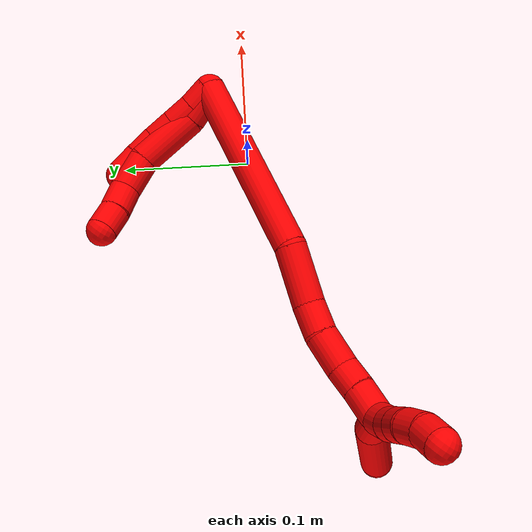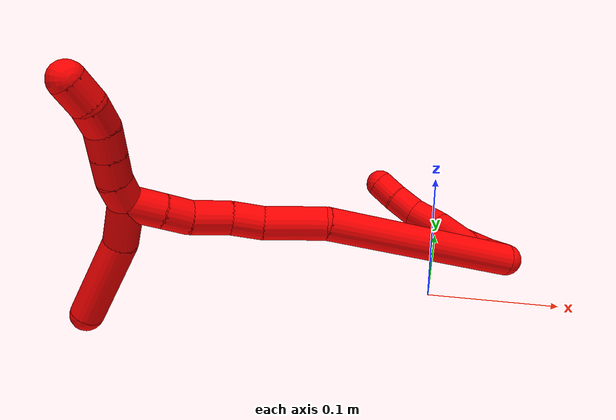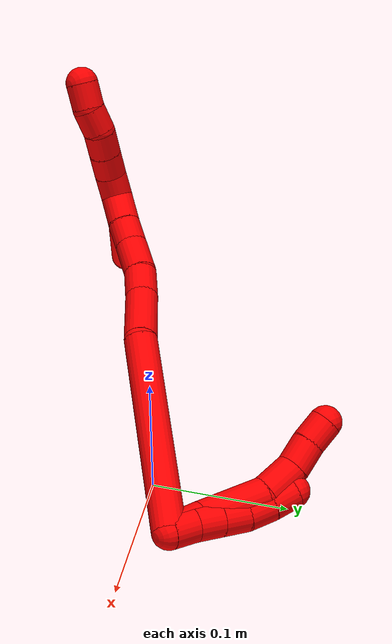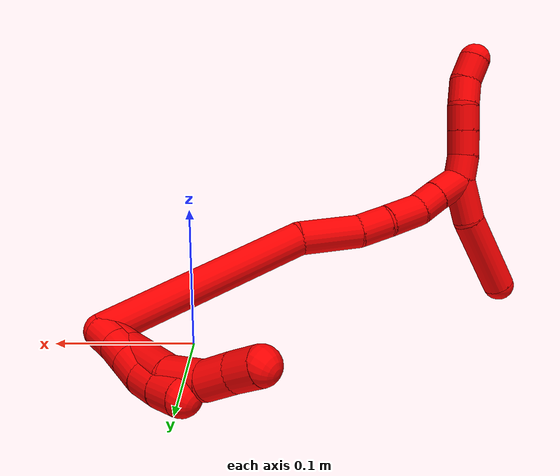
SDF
<sdf version="1.7">
 <world name="default">
  <model name="2">
   <static>0</static>
   <link name="2">
    <collision name="collision-cylinder-e_1_2_8">
     <pose>-7.4e-05 6.6e-05 0.014332 -0.004585 -0.005159 1.2e-05</pose>
     <geometry><cylinder><radius>0.0125</radius><length>0.028664</length></cylinder></geometry>
     <surface>
      <friction><ode><mu>1.16</mu><mu2>1.16</mu2><slip1>0</slip1><slip2>0</slip2></ode></friction>
      <contact><ode><kp>1e+06</kp><kd>1</kd><max_vel>0</max_vel><min_depth>0.001</min_depth></ode></contact>
     </surface>
    </collision>
    <visual name="visual-cylinder-e_1_2_8">
     <pose>-7.4e-05 6.6e-05 0.014332 -0.004585 -0.005159 1.2e-05</pose>
     <geometry><cylinder><radius>0.0125</radius><length>0.028664</length></cylinder></geometry>
     <material><ambient>1 0 0 1</ambient></material>
    </visual>
    <collision name="collision-cylinder-e_2_8_9">
     <pose>0.006509 -0.004318 0.052528 0.184317 0.267634 0.024882</pose>
     <geometry><cylinder><radius>0.0125</radius><length>0.050343</length></cylinder></geometry>
     <surface>
      <friction><ode><mu>1.16</mu><mu2>1.16</mu2><slip1>0</slip1><slip2>0</slip2></ode></friction>
      <contact><ode><kp>1e+06</kp><kd>1</kd><max_vel>0</max_vel><min_depth>0.001</min_depth></ode></contact>
     </surface>
    </collision>
    <visual name="visual-cylinder-e_2_8_9">
     <pose>0.006509 -0.004318 0.052528 0.184317 0.267634 0.024882</pose>
     <geometry><cylinder><radius>0.0125</radius><length>0.050343</length></cylinder></geometry>
     <material><ambient>1 0 0 1</ambient></material>
    </visual>
    <collision name="collision-cylinder-e_3_9_10">
     <pose>0.012777 -0.013912 0.089865 0.364768 -0.026906 -0.004963</pose>
     <geometry><cylinder><radius>0.0125</radius><length>0.028854</length></cylinder></geometry>
     <surface>
      <friction><ode><mu>1.16</mu><mu2>1.16</mu2><slip1>0</slip1><slip2>0</slip2></ode></friction>
      <contact><ode><kp>1e+06</kp><kd>1</kd><max_vel>0</max_vel><min_depth>0.001</min_depth></ode></contact>
     </surface>
    </collision>
    <visual name="visual-cylinder-e_3_9_10">
     <pose>0.012777 -0.013912 0.089865 0.364768 -0.026906 -0.004963</pose>
     <geometry><cylinder><radius>0.0125</radius><length>0.028854</length></cylinder></geometry>
     <material><ambient>1 0 0 1</ambient></material>
    </visual>
    <collision name="collision-cylinder-e_4_10_11">
     <pose>0.01126 -0.026076 0.111762 0.694687 -0.102619 -0.037179</pose>
     <geometry><cylinder><radius>0.0125</radius><length>0.022046</length></cylinder></geometry>
     <surface>
      <friction><ode><mu>1.16</mu><mu2>1.16</mu2><slip1>0</slip1><slip2>0</slip2></ode></friction>
      <contact><ode><kp>1e+06</kp><kd>1</kd><max_vel>0</max_vel><min_depth>0.001</min_depth></ode></contact>
     </surface>
    </collision>
    <visual name="visual-cylinder-e_4_10_11">
     <pose>0.01126 -0.026076 0.111762 0.694687 -0.102619 -0.037179</pose>
     <geometry><cylinder><radius>0.0125</radius><length>0.022046</length></cylinder></geometry>
     <material><ambient>1 0 0 1</ambient></material>
    </visual>
    <collision name="collision-cylinder-e_5_11_6">
     <pose>0.010347 -0.039214 0.128151 0.655129 0.021512 0.00731</pose>
     <geometry><cylinder><radius>0.0125</radius><length>0.020092</length></cylinder></geometry>
     <surface>
      <friction><ode><mu>1.16</mu><mu2>1.16</mu2><slip1>0</slip1><slip2>0</slip2></ode></friction>
      <contact><ode><kp>1e+06</kp><kd>1</kd><max_vel>0</max_vel><min_depth>0.001</min_depth></ode></contact>
     </surface>
    </collision>
    <visual name="visual-cylinder-e_5_11_6">
     <pose>0.010347 -0.039214 0.128151 0.655129 0.021512 0.00731</pose>
     <geometry><cylinder><radius>0.0125</radius><length>0.020092</length></cylinder></geometry>
     <material><ambient>1 0 0 1</ambient></material>
    </visual>
    <collision name="collision-cylinder-e_1_2_12">
     <pose>0.001415 0.000178 0.009898 -0.018015 0.141935 -0.001281</pose>
     <geometry><cylinder><radius>0.0125</radius><length>0.02</length></cylinder></geometry>
     <surface>
      <friction><ode><mu>1.16</mu><mu2>1.16</mu2><slip1>0</slip1><slip2>0</slip2></ode></friction>
      <contact><ode><kp>1e+06</kp><kd>1</kd><max_vel>0</max_vel><min_depth>0.001</min_depth></ode></contact>
     </surface>
    </collision>
    <visual name="visual-cylinder-e_1_2_12">
     <pose>0.001415 0.000178 0.009898 -0.018015 0.141935 -0.001281</pose>
     <geometry><cylinder><radius>0.0125</radius><length>0.02</length></cylinder></geometry>
     <material><ambient>1 0 0 1</ambient></material>
    </visual>
    <collision name="collision-cylinder-e_2_12_13">
     <pose>0.005404 0.000698 0.029452 -0.035296 0.260462 -0.004623</pose>
     <geometry><cylinder><radius>0.0125</radius><length>0.02</length></cylinder></geometry>
     <surface>
      <friction><ode><mu>1.16</mu><mu2>1.16</mu2><slip1>0</slip1><slip2>0</slip2></ode></friction>
      <contact><ode><kp>1e+06</kp><kd>1</kd><max_vel>0</max_vel><min_depth>0.001</min_depth></ode></contact>
     </surface>
    </collision>
    <visual name="visual-cylinder-e_2_12_13">
     <pose>0.005404 0.000698 0.029452 -0.035296 0.260462 -0.004623</pose>
     <geometry><cylinder><radius>0.0125</radius><length>0.02</length></cylinder></geometry>
     <material><ambient>1 0 0 1</ambient></material>
    </visual>
    <collision name="collision-cylinder-e_3_13_14">
     <pose>0.010559 0.001401 0.048764 -0.037536 0.260866 -0.004924</pose>
     <geometry><cylinder><radius>0.0125</radius><length>0.02</length></cylinder></geometry>
     <surface>
      <friction><ode><mu>1.16</mu><mu2>1.16</mu2><slip1>0</slip1><slip2>0</slip2></ode></friction>
      <contact><ode><kp>1e+06</kp><kd>1</kd><max_vel>0</max_vel><min_depth>0.001</min_depth></ode></contact>
     </surface>
    </collision>
    <visual name="visual-cylinder-e_3_13_14">
     <pose>0.010559 0.001401 0.048764 -0.037536 0.260866 -0.004924</pose>
     <geometry><cylinder><radius>0.0125</radius><length>0.02</length></cylinder></geometry>
     <material><ambient>1 0 0 1</ambient></material>
    </visual>
    <collision name="collision-cylinder-e_4_14_15">
     <pose>0.015273 0.000164 0.068056 0.16446 0.215131 0.017798</pose>
     <geometry><cylinder><radius>0.0125</radius><length>0.02</length></cylinder></geometry>
     <surface>
      <friction><ode><mu>1.16</mu><mu2>1.16</mu2><slip1>0</slip1><slip2>0</slip2></ode></friction>
      <contact><ode><kp>1e+06</kp><kd>1</kd><max_vel>0</max_vel><min_depth>0.001</min_depth></ode></contact>
     </surface>
    </collision>
    <visual name="visual-cylinder-e_4_14_15">
     <pose>0.015273 0.000164 0.068056 0.16446 0.215131 0.017798</pose>
     <geometry><cylinder><radius>0.0125</radius><length>0.02</length></cylinder></geometry>
     <material><ambient>1 0 0 1</ambient></material>
    </visual>
    <collision name="collision-cylinder-e_5_15_5">
     <pose>0.019244 -0.004142 0.087144 0.278963 0.184677 0.026</pose>
     <geometry><cylinder><radius>0.0125</radius><length>0.02</length></cylinder></geometry>
     <surface>
      <friction><ode><mu>1.16</mu><mu2>1.16</mu2><slip1>0</slip1><slip2>0</slip2></ode></friction>
      <contact><ode><kp>1e+06</kp><kd>1</kd><max_vel>0</max_vel><min_depth>0.001</min_depth></ode></contact>
     </surface>
    </collision>
    <visual name="visual-cylinder-e_5_15_5">
     <pose>0.019244 -0.004142 0.087144 0.278963 0.184677 0.026</pose>
     <geometry><cylinder><radius>0.0125</radius><length>0.02</length></cylinder></geometry>
     <material><ambient>1 0 0 1</ambient></material>
    </visual>
    <collision name="collision-cylinder-e_1_2_16">
     <pose>-0.055849 -0.043534 0.03045 0.960441 -0.810375 -0.439623</pose>
     <geometry><cylinder><radius>0.0125</radius><length>0.154162</length></cylinder></geometry>
     <surface>
      <friction><ode><mu>1.16</mu><mu2>1.16</mu2><slip1>0</slip1><slip2>0</slip2></ode></friction>
      <contact><ode><kp>1e+06</kp><kd>1</kd><max_vel>0</max_vel><min_depth>0.001</min_depth></ode></contact>
     </surface>
    </collision>
    <visual name="visual-cylinder-e_1_2_16">
     <pose>-0.055849 -0.043534 0.03045 0.960441 -0.810375 -0.439623</pose>
     <geometry><cylinder><radius>0.0125</radius><length>0.154162</length></cylinder></geometry>
     <material><ambient>1 0 0 1</ambient></material>
    </visual>
    <collision name="collision-cylinder-e_2_16_17">
     <pose>-0.128759 -0.094593 0.074566 0.50334 -0.830075 -0.22563</pose>
     <geometry><cylinder><radius>0.0125</radius><length>0.046239</length></cylinder></geometry>
     <surface>
      <friction><ode><mu>1.16</mu><mu2>1.16</mu2><slip1>0</slip1><slip2>0</slip2></ode></friction>
      <contact><ode><kp>1e+06</kp><kd>1</kd><max_vel>0</max_vel><min_depth>0.001</min_depth></ode></contact>
     </surface>
    </collision>
    <visual name="visual-cylinder-e_2_16_17">
     <pose>-0.128759 -0.094593 0.074566 0.50334 -0.830075 -0.22563</pose>
     <geometry><cylinder><radius>0.0125</radius><length>0.046239</length></cylinder></geometry>
     <material><ambient>1 0 0 1</ambient></material>
    </visual>
    <collision name="collision-cylinder-e_3_17_18">
     <pose>-0.154426 -0.108186 0.094119 0.800529 -0.794301 -0.351276</pose>
     <geometry><cylinder><radius>0.0125</radius><length>0.024124</length></cylinder></geometry>
     <surface>
      <friction><ode><mu>1.16</mu><mu2>1.16</mu2><slip1>0</slip1><slip2>0</slip2></ode></friction>
      <contact><ode><kp>1e+06</kp><kd>1</kd><max_vel>0</max_vel><min_depth>0.001</min_depth></ode></contact>
     </surface>
    </collision>
    <visual name="visual-cylinder-e_3_17_18">
     <pose>-0.154426 -0.108186 0.094119 0.800529 -0.794301 -0.351276</pose>
     <geometry><cylinder><radius>0.0125</radius><length>0.024124</length></cylinder></geometry>
     <material><ambient>1 0 0 1</ambient></material>
    </visual>
    <collision name="collision-cylinder-e_4_18_19">
     <pose>-0.175397 -0.1206 0.105022 0.901882 -0.991431 -0.512184</pose>
     <geometry><cylinder><radius>0.0125</radius><length>0.029556</length></cylinder></geometry>
     <surface>
      <friction><ode><mu>1.16</mu><mu2>1.16</mu2><slip1>0</slip1><slip2>0</slip2></ode></friction>
      <contact><ode><kp>1e+06</kp><kd>1</kd><max_vel>0</max_vel><min_depth>0.001</min_depth></ode></contact>
     </surface>
    </collision>
    <visual name="visual-cylinder-e_4_18_19">
     <pose>-0.175397 -0.1206 0.105022 0.901882 -0.991431 -0.512184</pose>
     <geometry><cylinder><radius>0.0125</radius><length>0.029556</length></cylinder></geometry>
     <material><ambient>1 0 0 1</ambient></material>
    </visual>
    <collision name="collision-cylinder-e_5_19_20">
     <pose>-0.195254 -0.13349 0.112133 1.26111 -0.828625 -0.62125</pose>
     <geometry><cylinder><radius>0.0125</radius><length>0.020327</length></cylinder></geometry>
     <surface>
      <friction><ode><mu>1.16</mu><mu2>1.16</mu2><slip1>0</slip1><slip2>0</slip2></ode></friction>
      <contact><ode><kp>1e+06</kp><kd>1</kd><max_vel>0</max_vel><min_depth>0.001</min_depth></ode></contact>
     </surface>
    </collision>
    <visual name="visual-cylinder-e_5_19_20">
     <pose>-0.195254 -0.13349 0.112133 1.26111 -0.828625 -0.62125</pose>
     <geometry><cylinder><radius>0.0125</radius><length>0.020327</length></cylinder></geometry>
     <material><ambient>1 0 0 1</ambient></material>
    </visual>
    <collision name="collision-cylinder-e_6_20_1">
     <pose>-0.212118 -0.148053 0.117625 1.16992 -0.822035 -0.562022</pose>
     <geometry><cylinder><radius>0.0125</radius><length>0.025592</length></cylinder></geometry>
     <surface>
      <friction><ode><mu>1.16</mu><mu2>1.16</mu2><slip1>0</slip1><slip2>0</slip2></ode></friction>
      <contact><ode><kp>1e+06</kp><kd>1</kd><max_vel>0</max_vel><min_depth>0.001</min_depth></ode></contact>
     </surface>
    </collision>
    <visual name="visual-cylinder-e_6_20_1">
     <pose>-0.212118 -0.148053 0.117625 1.16992 -0.822035 -0.562022</pose>
     <geometry><cylinder><radius>0.0125</radius><length>0.025592</length></cylinder></geometry>
     <material><ambient>1 0 0 1</ambient></material>
    </visual>
    <collision name="collision-cylinder-e_1_1_21">
     <pose>-0.222886 -0.165716 0.118776 1.79991 -0.139953 -0.176179</pose>
     <geometry><cylinder><radius>0.0125</radius><length>0.02</length></cylinder></geometry>
     <surface>
      <friction><ode><mu>1.16</mu><mu2>1.16</mu2><slip1>0</slip1><slip2>0</slip2></ode></friction>
      <contact><ode><kp>1e+06</kp><kd>1</kd><max_vel>0</max_vel><min_depth>0.001</min_depth></ode></contact>
     </surface>
    </collision>
    <visual name="visual-cylinder-e_1_1_21">
     <pose>-0.222886 -0.165716 0.118776 1.79991 -0.139953 -0.176179</pose>
     <geometry><cylinder><radius>0.0125</radius><length>0.02</length></cylinder></geometry>
     <material><ambient>1 0 0 1</ambient></material>
    </visual>
    <collision name="collision-cylinder-e_2_21_22">
     <pose>-0.223639 -0.184816 0.11334 1.89579 0.064241 0.089407</pose>
     <geometry><cylinder><radius>0.0125</radius><length>0.02</length></cylinder></geometry>
     <surface>
      <friction><ode><mu>1.16</mu><mu2>1.16</mu2><slip1>0</slip1><slip2>0</slip2></ode></friction>
      <contact><ode><kp>1e+06</kp><kd>1</kd><max_vel>0</max_vel><min_depth>0.001</min_depth></ode></contact>
     </surface>
    </collision>
    <visual name="visual-cylinder-e_2_21_22">
     <pose>-0.223639 -0.184816 0.11334 1.89579 0.064241 0.089407</pose>
     <geometry><cylinder><radius>0.0125</radius><length>0.02</length></cylinder></geometry>
     <material><ambient>1 0 0 1</ambient></material>
    </visual>
    <collision name="collision-cylinder-e_3_22_23">
     <pose>-0.222361 -0.203737 0.106987 1.89368 0.063671 0.088417</pose>
     <geometry><cylinder><radius>0.0125</radius><length>0.02</length></cylinder></geometry>
     <surface>
      <friction><ode><mu>1.16</mu><mu2>1.16</mu2><slip1>0</slip1><slip2>0</slip2></ode></friction>
      <contact><ode><kp>1e+06</kp><kd>1</kd><max_vel>0</max_vel><min_depth>0.001</min_depth></ode></contact>
     </surface>
    </collision>
    <visual name="visual-cylinder-e_3_22_23">
     <pose>-0.222361 -0.203737 0.106987 1.89368 0.063671 0.088417</pose>
     <geometry><cylinder><radius>0.0125</radius><length>0.02</length></cylinder></geometry>
     <material><ambient>1 0 0 1</ambient></material>
    </visual>
    <collision name="collision-cylinder-e_4_23_24">
     <pose>-0.223965 -0.222331 0.100411 1.92823 -0.225937 -0.324087</pose>
     <geometry><cylinder><radius>0.0125</radius><length>0.02</length></cylinder></geometry>
     <surface>
      <friction><ode><mu>1.16</mu><mu2>1.16</mu2><slip1>0</slip1><slip2>0</slip2></ode></friction>
      <contact><ode><kp>1e+06</kp><kd>1</kd><max_vel>0</max_vel><min_depth>0.001</min_depth></ode></contact>
     </surface>
    </collision>
    <visual name="visual-cylinder-e_4_23_24">
     <pose>-0.223965 -0.222331 0.100411 1.92823 -0.225937 -0.324087</pose>
     <geometry><cylinder><radius>0.0125</radius><length>0.02</length></cylinder></geometry>
     <material><ambient>1 0 0 1</ambient></material>
    </visual>
    <collision name="collision-cylinder-e_5_24_4">
     <pose>-0.22944 -0.240896 0.096281 1.647 -0.329426 -0.355012</pose>
     <geometry><cylinder><radius>0.0125</radius><length>0.02</length></cylinder></geometry>
     <surface>
      <friction><ode><mu>1.16</mu><mu2>1.16</mu2><slip1>0</slip1><slip2>0</slip2></ode></friction>
      <contact><ode><kp>1e+06</kp><kd>1</kd><max_vel>0</max_vel><min_depth>0.001</min_depth></ode></contact>
     </surface>
    </collision>
    <visual name="visual-cylinder-e_5_24_4">
     <pose>-0.22944 -0.240896 0.096281 1.647 -0.329426 -0.355012</pose>
     <geometry><cylinder><radius>0.0125</radius><length>0.02</length></cylinder></geometry>
     <material><ambient>1 0 0 1</ambient></material>
    </visual>
    <collision name="collision-cylinder-e_1_1_25">
     <pose>-0.22665 -0.141666 0.128403 -1.09748 -0.308538 0.189573</pose>
     <geometry><cylinder><radius>0.0125</radius><length>0.033977</length></cylinder></geometry>
     <surface>
      <friction><ode><mu>1.16</mu><mu2>1.16</mu2><slip1>0</slip1><slip2>0</slip2></ode></friction>
      <contact><ode><kp>1e+06</kp><kd>1</kd><max_vel>0</max_vel><min_depth>0.001</min_depth></ode></contact>
     </surface>
    </collision>
    <visual name="visual-cylinder-e_1_1_25">
     <pose>-0.22665 -0.141666 0.128403 -1.09748 -0.308538 0.189573</pose>
     <geometry><cylinder><radius>0.0125</radius><length>0.033977</length></cylinder></geometry>
     <material><ambient>1 0 0 1</ambient></material>
    </visual>
    <collision name="collision-cylinder-e_2_25_3">
     <pose>-0.249522 -0.103758 0.150738 -1.00403 -0.566369 0.316802</pose>
     <geometry><cylinder><radius>0.0125</radius><length>0.066023</length></cylinder></geometry>
     <surface>
      <friction><ode><mu>1.16</mu><mu2>1.16</mu2><slip1>0</slip1><slip2>0</slip2></ode></friction>
      <contact><ode><kp>1e+06</kp><kd>1</kd><max_vel>0</max_vel><min_depth>0.001</min_depth></ode></contact>
     </surface>
    </collision>
    <visual name="visual-cylinder-e_2_25_3">
     <pose>-0.249522 -0.103758 0.150738 -1.00403 -0.566369 0.316802</pose>
     <geometry><cylinder><radius>0.0125</radius><length>0.066023</length></cylinder></geometry>
     <material><ambient>1 0 0 1</ambient></material>
    </visual>
    <collision name="collision-sphere-3">
     <pose>-0.267235 -0.080256 0.165694 0 -0 0</pose>
     <geometry><sphere><radius>0.0125</radius></sphere></geometry>
     <surface>
      <friction><ode><mu>1.16</mu><mu2>1.16</mu2><slip1>0</slip1><slip2>0</slip2></ode></friction>
      <contact><ode><kp>1e+06</kp><kd>1</kd><max_vel>0</max_vel><min_depth>0.001</min_depth></ode></contact>
     </surface>
    </collision>
    <visual name="visual-sphere-3">
     <pose>-0.267235 -0.080256 0.165694 0 -0 0</pose>
     <geometry><sphere><radius>0.0125</radius></sphere></geometry>
     <material><ambient>1 0 0 1</ambient></material>
    </visual>
    <collision name="collision-sphere-25">
     <pose>-0.231809 -0.127259 0.135781 0 -0 0</pose>
     <geometry><sphere><radius>0.0125</radius></sphere></geometry>
     <surface>
      <friction><ode><mu>1.16</mu><mu2>1.16</mu2><slip1>0</slip1><slip2>0</slip2></ode></friction>
      <contact><ode><kp>1e+06</kp><kd>1</kd><max_vel>0</max_vel><min_depth>0.001</min_depth></ode></contact>
     </surface>
    </collision>
    <visual name="visual-sphere-25">
     <pose>-0.231809 -0.127259 0.135781 0 -0 0</pose>
     <geometry><sphere><radius>0.0125</radius></sphere></geometry>
     <material><ambient>1 0 0 1</ambient></material>
    </visual>
    <collision name="collision-sphere-4">
     <pose>-0.232675 -0.250331 0.09556 0 -0 0</pose>
     <geometry><sphere><radius>0.0125</radius></sphere></geometry>
     <surface>
      <friction><ode><mu>1.16</mu><mu2>1.16</mu2><slip1>0</slip1><slip2>0</slip2></ode></friction>
      <contact><ode><kp>1e+06</kp><kd>1</kd><max_vel>0</max_vel><min_depth>0.001</min_depth></ode></contact>
     </surface>
    </collision>
    <visual name="visual-sphere-4">
     <pose>-0.232675 -0.250331 0.09556 0 -0 0</pose>
     <geometry><sphere><radius>0.0125</radius></sphere></geometry>
     <material><ambient>1 0 0 1</ambient></material>
    </visual>
    <collision name="collision-sphere-24">
     <pose>-0.226205 -0.231461 0.097001 0 -0 0</pose>
     <geometry><sphere><radius>0.0125</radius></sphere></geometry>
     <surface>
      <friction><ode><mu>1.16</mu><mu2>1.16</mu2><slip1>0</slip1><slip2>0</slip2></ode></friction>
      <contact><ode><kp>1e+06</kp><kd>1</kd><max_vel>0</max_vel><min_depth>0.001</min_depth></ode></contact>
     </surface>
    </collision>
    <visual name="visual-sphere-24">
     <pose>-0.226205 -0.231461 0.097001 0 -0 0</pose>
     <geometry><sphere><radius>0.0125</radius></sphere></geometry>
     <material><ambient>1 0 0 1</ambient></material>
    </visual>
    <collision name="collision-sphere-23">
     <pose>-0.221725 -0.213201 0.10382 0 -0 0</pose>
     <geometry><sphere><radius>0.0125</radius></sphere></geometry>
     <surface>
      <friction><ode><mu>1.16</mu><mu2>1.16</mu2><slip1>0</slip1><slip2>0</slip2></ode></friction>
      <contact><ode><kp>1e+06</kp><kd>1</kd><max_vel>0</max_vel><min_depth>0.001</min_depth></ode></contact>
     </surface>
    </collision>
    <visual name="visual-sphere-23">
     <pose>-0.221725 -0.213201 0.10382 0 -0 0</pose>
     <geometry><sphere><radius>0.0125</radius></sphere></geometry>
     <material><ambient>1 0 0 1</ambient></material>
    </visual>
    <collision name="collision-sphere-22">
     <pose>-0.222997 -0.194273 0.110154 0 -0 0</pose>
     <geometry><sphere><radius>0.0125</radius></sphere></geometry>
     <surface>
      <friction><ode><mu>1.16</mu><mu2>1.16</mu2><slip1>0</slip1><slip2>0</slip2></ode></friction>
      <contact><ode><kp>1e+06</kp><kd>1</kd><max_vel>0</max_vel><min_depth>0.001</min_depth></ode></contact>
     </surface>
    </collision>
    <visual name="visual-sphere-22">
     <pose>-0.222997 -0.194273 0.110154 0 -0 0</pose>
     <geometry><sphere><radius>0.0125</radius></sphere></geometry>
     <material><ambient>1 0 0 1</ambient></material>
    </visual>
    <collision name="collision-sphere-21">
     <pose>-0.224281 -0.175359 0.116527 0 -0 0</pose>
     <geometry><sphere><radius>0.0125</radius></sphere></geometry>
     <surface>
      <friction><ode><mu>1.16</mu><mu2>1.16</mu2><slip1>0</slip1><slip2>0</slip2></ode></friction>
      <contact><ode><kp>1e+06</kp><kd>1</kd><max_vel>0</max_vel><min_depth>0.001</min_depth></ode></contact>
     </surface>
    </collision>
    <visual name="visual-sphere-21">
     <pose>-0.224281 -0.175359 0.116527 0 -0 0</pose>
     <geometry><sphere><radius>0.0125</radius></sphere></geometry>
     <material><ambient>1 0 0 1</ambient></material>
    </visual>
    <collision name="collision-sphere-1">
     <pose>-0.221491 -0.156073 0.121025 0 -0 0</pose>
     <geometry><sphere><radius>0.0125</radius></sphere></geometry>
     <surface>
      <friction><ode><mu>1.16</mu><mu2>1.16</mu2><slip1>0</slip1><slip2>0</slip2></ode></friction>
      <contact><ode><kp>1e+06</kp><kd>1</kd><max_vel>0</max_vel><min_depth>0.001</min_depth></ode></contact>
     </surface>
    </collision>
    <visual name="visual-sphere-1">
     <pose>-0.221491 -0.156073 0.121025 0 -0 0</pose>
     <geometry><sphere><radius>0.0125</radius></sphere></geometry>
     <material><ambient>1 0 0 1</ambient></material>
    </visual>
    <collision name="collision-sphere-6">
     <pose>0.010563 -0.045333 0.136115 0 -0 0</pose>
     <geometry><sphere><radius>0.0125</radius></sphere></geometry>
     <surface>
      <friction><ode><mu>1.16</mu><mu2>1.16</mu2><slip1>0</slip1><slip2>0</slip2></ode></friction>
      <contact><ode><kp>1e+06</kp><kd>1</kd><max_vel>0</max_vel><min_depth>0.001</min_depth></ode></contact>
     </surface>
    </collision>
    <visual name="visual-sphere-6">
     <pose>0.010563 -0.045333 0.136115 0 -0 0</pose>
     <geometry><sphere><radius>0.0125</radius></sphere></geometry>
     <material><ambient>1 0 0 1</ambient></material>
    </visual>
    <collision name="collision-sphere-11">
     <pose>0.010131 -0.033095 0.120186 0 -0 0</pose>
     <geometry><sphere><radius>0.0125</radius></sphere></geometry>
     <surface>
      <friction><ode><mu>1.16</mu><mu2>1.16</mu2><slip1>0</slip1><slip2>0</slip2></ode></friction>
      <contact><ode><kp>1e+06</kp><kd>1</kd><max_vel>0</max_vel><min_depth>0.001</min_depth></ode></contact>
     </surface>
    </collision>
    <visual name="visual-sphere-11">
     <pose>0.010131 -0.033095 0.120186 0 -0 0</pose>
     <geometry><sphere><radius>0.0125</radius></sphere></geometry>
     <material><ambient>1 0 0 1</ambient></material>
    </visual>
    <collision name="collision-sphere-10">
     <pose>0.012389 -0.019056 0.103338 0 -0 0</pose>
     <geometry><sphere><radius>0.0125</radius></sphere></geometry>
     <surface>
      <friction><ode><mu>1.16</mu><mu2>1.16</mu2><slip1>0</slip1><slip2>0</slip2></ode></friction>
      <contact><ode><kp>1e+06</kp><kd>1</kd><max_vel>0</max_vel><min_depth>0.001</min_depth></ode></contact>
     </surface>
    </collision>
    <visual name="visual-sphere-10">
     <pose>0.012389 -0.019056 0.103338 0 -0 0</pose>
     <geometry><sphere><radius>0.0125</radius></sphere></geometry>
     <material><ambient>1 0 0 1</ambient></material>
    </visual>
    <collision name="collision-sphere-9">
     <pose>0.013165 -0.008767 0.076392 0 -0 0</pose>
     <geometry><sphere><radius>0.0125</radius></sphere></geometry>
     <surface>
      <friction><ode><mu>1.16</mu><mu2>1.16</mu2><slip1>0</slip1><slip2>0</slip2></ode></friction>
      <contact><ode><kp>1e+06</kp><kd>1</kd><max_vel>0</max_vel><min_depth>0.001</min_depth></ode></contact>
     </surface>
    </collision>
    <visual name="visual-sphere-9">
     <pose>0.013165 -0.008767 0.076392 0 -0 0</pose>
     <geometry><sphere><radius>0.0125</radius></sphere></geometry>
     <material><ambient>1 0 0 1</ambient></material>
    </visual>
    <collision name="collision-sphere-2">
     <geometry><sphere><radius>0.0125</radius></sphere></geometry>
     <surface>
      <friction><ode><mu>1.16</mu><mu2>1.16</mu2><slip1>0</slip1><slip2>0</slip2></ode></friction>
      <contact><ode><kp>1e+06</kp><kd>1</kd><max_vel>0</max_vel><min_depth>0.001</min_depth></ode></contact>
     </surface>
    </collision>
    <visual name="visual-sphere-2">
     <geometry><sphere><radius>0.0125</radius></sphere></geometry>
     <material><ambient>1 0 0 1</ambient></material>
    </visual>
    <collision name="collision-sphere-19">
     <pose>-0.187763 -0.126947 0.110039 0 -0 0</pose>
     <geometry><sphere><radius>0.0125</radius></sphere></geometry>
     <surface>
      <friction><ode><mu>1.16</mu><mu2>1.16</mu2><slip1>0</slip1><slip2>0</slip2></ode></friction>
      <contact><ode><kp>1e+06</kp><kd>1</kd><max_vel>0</max_vel><min_depth>0.001</min_depth></ode></contact>
     </surface>
    </collision>
    <visual name="visual-sphere-19">
     <pose>-0.187763 -0.126947 0.110039 0 -0 0</pose>
     <geometry><sphere><radius>0.0125</radius></sphere></geometry>
     <material><ambient>1 0 0 1</ambient></material>
    </visual>
    <collision name="collision-sphere-8">
     <pose>-0.000148 0.000131 0.028664 0 -0 0</pose>
     <geometry><sphere><radius>0.0125</radius></sphere></geometry>
     <surface>
      <friction><ode><mu>1.16</mu><mu2>1.16</mu2><slip1>0</slip1><slip2>0</slip2></ode></friction>
      <contact><ode><kp>1e+06</kp><kd>1</kd><max_vel>0</max_vel><min_depth>0.001</min_depth></ode></contact>
     </surface>
    </collision>
    <visual name="visual-sphere-8">
     <pose>-0.000148 0.000131 0.028664 0 -0 0</pose>
     <geometry><sphere><radius>0.0125</radius></sphere></geometry>
     <material><ambient>1 0 0 1</ambient></material>
    </visual>
    <collision name="collision-sphere-12">
     <pose>0.002829 0.000357 0.019796 0 -0 0</pose>
     <geometry><sphere><radius>0.0125</radius></sphere></geometry>
     <surface>
      <friction><ode><mu>1.16</mu><mu2>1.16</mu2><slip1>0</slip1><slip2>0</slip2></ode></friction>
      <contact><ode><kp>1e+06</kp><kd>1</kd><max_vel>0</max_vel><min_depth>0.001</min_depth></ode></contact>
     </surface>
    </collision>
    <visual name="visual-sphere-12">
     <pose>0.002829 0.000357 0.019796 0 -0 0</pose>
     <geometry><sphere><radius>0.0125</radius></sphere></geometry>
     <material><ambient>1 0 0 1</ambient></material>
    </visual>
    <collision name="collision-sphere-13">
     <pose>0.00798 0.001039 0.039109 0 -0 0</pose>
     <geometry><sphere><radius>0.0125</radius></sphere></geometry>
     <surface>
      <friction><ode><mu>1.16</mu><mu2>1.16</mu2><slip1>0</slip1><slip2>0</slip2></ode></friction>
      <contact><ode><kp>1e+06</kp><kd>1</kd><max_vel>0</max_vel><min_depth>0.001</min_depth></ode></contact>
     </surface>
    </collision>
    <visual name="visual-sphere-13">
     <pose>0.00798 0.001039 0.039109 0 -0 0</pose>
     <geometry><sphere><radius>0.0125</radius></sphere></geometry>
     <material><ambient>1 0 0 1</ambient></material>
    </visual>
    <collision name="collision-sphere-14">
     <pose>0.013138 0.001764 0.058419 0 -0 0</pose>
     <geometry><sphere><radius>0.0125</radius></sphere></geometry>
     <surface>
      <friction><ode><mu>1.16</mu><mu2>1.16</mu2><slip1>0</slip1><slip2>0</slip2></ode></friction>
      <contact><ode><kp>1e+06</kp><kd>1</kd><max_vel>0</max_vel><min_depth>0.001</min_depth></ode></contact>
     </surface>
    </collision>
    <visual name="visual-sphere-14">
     <pose>0.013138 0.001764 0.058419 0 -0 0</pose>
     <geometry><sphere><radius>0.0125</radius></sphere></geometry>
     <material><ambient>1 0 0 1</ambient></material>
    </visual>
    <collision name="collision-sphere-15">
     <pose>0.017408 -0.001435 0.077694 0 -0 0</pose>
     <geometry><sphere><radius>0.0125</radius></sphere></geometry>
     <surface>
      <friction><ode><mu>1.16</mu><mu2>1.16</mu2><slip1>0</slip1><slip2>0</slip2></ode></friction>
      <contact><ode><kp>1e+06</kp><kd>1</kd><max_vel>0</max_vel><min_depth>0.001</min_depth></ode></contact>
     </surface>
    </collision>
    <visual name="visual-sphere-15">
     <pose>0.017408 -0.001435 0.077694 0 -0 0</pose>
     <geometry><sphere><radius>0.0125</radius></sphere></geometry>
     <material><ambient>1 0 0 1</ambient></material>
    </visual>
    <collision name="collision-sphere-5">
     <pose>0.02108 -0.006849 0.096594 0 -0 0</pose>
     <geometry><sphere><radius>0.0125</radius></sphere></geometry>
     <surface>
      <friction><ode><mu>1.16</mu><mu2>1.16</mu2><slip1>0</slip1><slip2>0</slip2></ode></friction>
      <contact><ode><kp>1e+06</kp><kd>1</kd><max_vel>0</max_vel><min_depth>0.001</min_depth></ode></contact>
     </surface>
    </collision>
    <visual name="visual-sphere-5">
     <pose>0.02108 -0.006849 0.096594 0 -0 0</pose>
     <geometry><sphere><radius>0.0125</radius></sphere></geometry>
     <material><ambient>1 0 0 1</ambient></material>
    </visual>
    <collision name="collision-sphere-16">
     <pose>-0.111697 -0.087068 0.0609 0 -0 0</pose>
     <geometry><sphere><radius>0.0125</radius></sphere></geometry>
     <surface>
      <friction><ode><mu>1.16</mu><mu2>1.16</mu2><slip1>0</slip1><slip2>0</slip2></ode></friction>
      <contact><ode><kp>1e+06</kp><kd>1</kd><max_vel>0</max_vel><min_depth>0.001</min_depth></ode></contact>
     </surface>
    </collision>
    <visual name="visual-sphere-16">
     <pose>-0.111697 -0.087068 0.0609 0 -0 0</pose>
     <geometry><sphere><radius>0.0125</radius></sphere></geometry>
     <material><ambient>1 0 0 1</ambient></material>
    </visual>
    <collision name="collision-sphere-17">
     <pose>-0.145821 -0.102119 0.088232 0 -0 0</pose>
     <geometry><sphere><radius>0.0125</radius></sphere></geometry>
     <surface>
      <friction><ode><mu>1.16</mu><mu2>1.16</mu2><slip1>0</slip1><slip2>0</slip2></ode></friction>
      <contact><ode><kp>1e+06</kp><kd>1</kd><max_vel>0</max_vel><min_depth>0.001</min_depth></ode></contact>
     </surface>
    </collision>
    <visual name="visual-sphere-17">
     <pose>-0.145821 -0.102119 0.088232 0 -0 0</pose>
     <geometry><sphere><radius>0.0125</radius></sphere></geometry>
     <material><ambient>1 0 0 1</ambient></material>
    </visual>
    <collision name="collision-sphere-18">
     <pose>-0.163031 -0.114253 0.100005 0 -0 0</pose>
     <geometry><sphere><radius>0.0125</radius></sphere></geometry>
     <surface>
      <friction><ode><mu>1.16</mu><mu2>1.16</mu2><slip1>0</slip1><slip2>0</slip2></ode></friction>
      <contact><ode><kp>1e+06</kp><kd>1</kd><max_vel>0</max_vel><min_depth>0.001</min_depth></ode></contact>
     </surface>
    </collision>
    <visual name="visual-sphere-18">
     <pose>-0.163031 -0.114253 0.100005 0 -0 0</pose>
     <geometry><sphere><radius>0.0125</radius></sphere></geometry>
     <material><ambient>1 0 0 1</ambient></material>
    </visual>
    <collision name="collision-sphere-20">
     <pose>-0.202744 -0.140032 0.114226 0 -0 0</pose>
     <geometry><sphere><radius>0.0125</radius></sphere></geometry>
     <surface>
      <friction><ode><mu>1.16</mu><mu2>1.16</mu2><slip1>0</slip1><slip2>0</slip2></ode></friction>
      <contact><ode><kp>1e+06</kp><kd>1</kd><max_vel>0</max_vel><min_depth>0.001</min_depth></ode></contact>
     </surface>
    </collision>
    <visual name="visual-sphere-20">
     <pose>-0.202744 -0.140032 0.114226 0 -0 0</pose>
     <geometry><sphere><radius>0.0125</radius></sphere></geometry>
     <material><ambient>1 0 0 1</ambient></material>
    </visual>
    <inertial>
     <pose>-0.103071 -0.077052 0.079187 0 -0 0</pose>
     <mass>0.75</mass>
     <inertia>
      <ixx>0.000159</ixx>
      <ixy>0</ixy>
      <ixz>0</ixz>
      <iyy>0.000197</iyy>
      <iyz>0</iyz>
      <izz>0.000455</izz>
     </inertia>
    </inertial>
   </link>
   <pose>0.058654 0.027494 0.02233 -1.77816 -0.201571 0.948822</pose>
  </model>
 </world>
</sdf>
